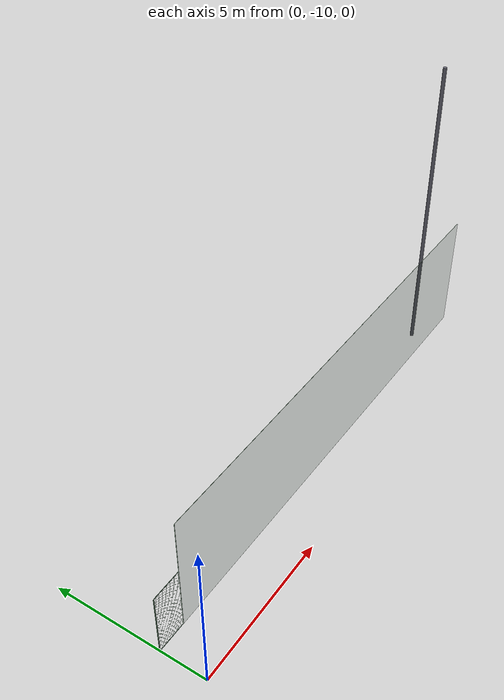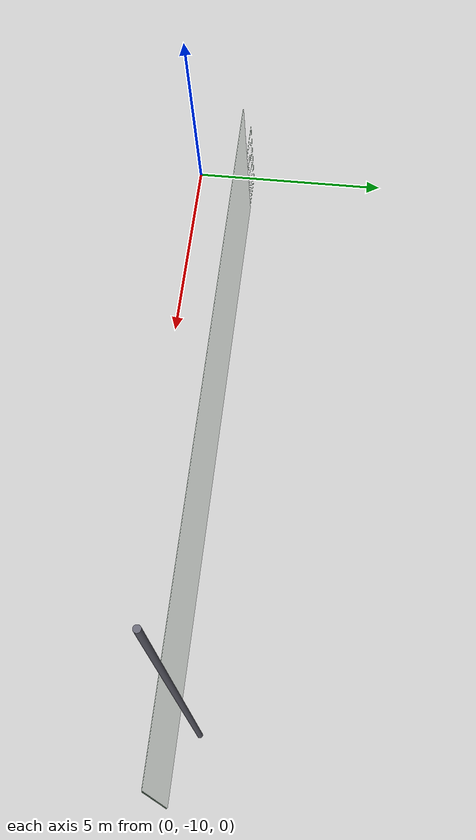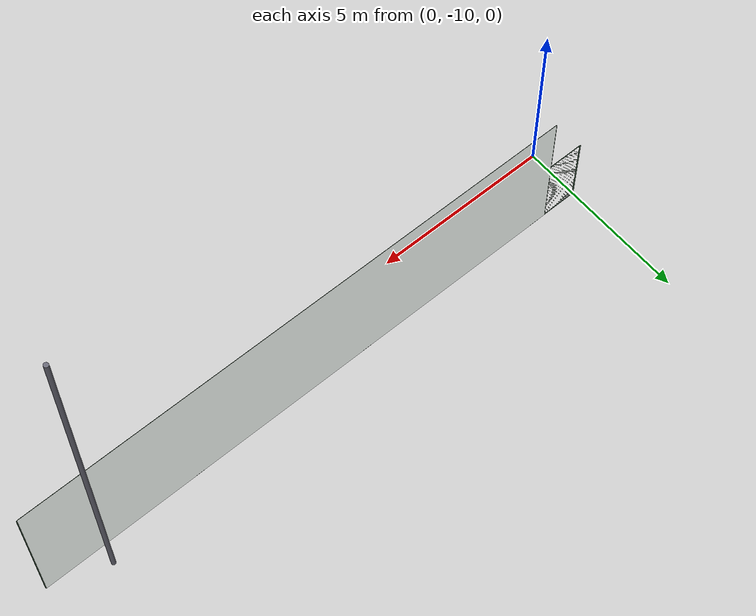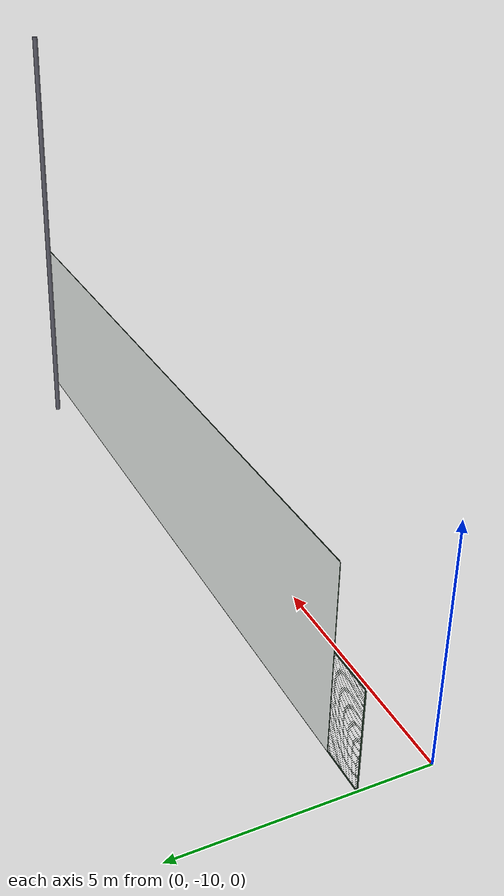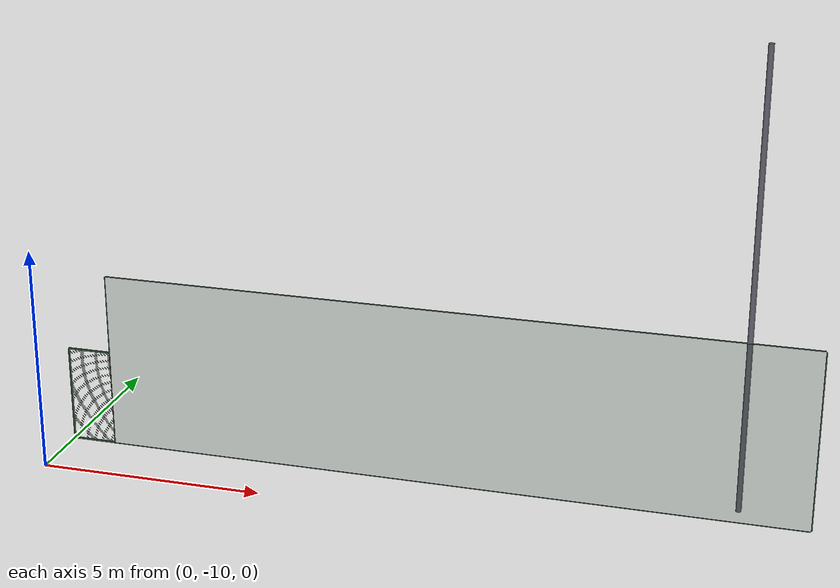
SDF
<sdf version="1.9">
 <model name="tennis_court">
  <static>true</static>
  <link name="fence_south_east">
   <pose>8.77 -8.5 0 0 0 0</pose>
   <collision name="col">
    <pose>0 0 2.0 0 0 0</pose>
    <geometry><box><size>15.54 0.08 4.0</size></box></geometry>
   </collision>
   <visual name="lidar_screen">
    <pose>0 0 2.0 0 0 0</pose>
    <geometry><box><size>15.54 0.02 4.0</size></box></geometry>
    <material><ambient>0.08 0.20 0.10 0.05</ambient><diffuse>0.08 0.20 0.10 0.05</diffuse></material>
    <transparency>0.95</transparency>
   </visual>
   <visual name="v">
    <geometry><mesh><uri>model://tennis_court/meshes/fence_gate_side.dae</uri></mesh></geometry>
    <material>
     <double_sided>true</double_sided>
     <ambient>0.06 0.16 0.08 0.88</ambient>
     <diffuse>0.08 0.20 0.10 0.88</diffuse>
     <specular>0.04 0.08 0.04 1</specular>
    </material>
   </visual>
  </link>
  <link name="gate_leaf_east">
   <pose>0.5 -8.5 0 0 0 0</pose>
   <visual name="v">
    <geometry><mesh><uri>model://tennis_court/meshes/gate_leaf.dae</uri></mesh></geometry>
    <material>
     <double_sided>true</double_sided>
     <ambient>0.06 0.16 0.08 0.88</ambient>
     <diffuse>0.08 0.20 0.10 0.88</diffuse>
     <specular>0.04 0.08 0.04 1</specular>
    </material>
   </visual>
  </link>
  <link name="pole_se">
   <pose>15.0 -8.0 5.0 0 0 0</pose>
   <collision name="col">
    <geometry><cylinder><radius>0.06</radius><length>10.0</length></cylinder></geometry>
   </collision>
   <visual name="v">
    <geometry><cylinder><radius>0.06</radius><length>10.0</length></cylinder></geometry>
    <material><ambient>0.35 0.35 0.40 1</ambient><diffuse>0.4 0.4 0.45 1</diffuse></material>
   </visual>
  </link>
 </model>
</sdf>
